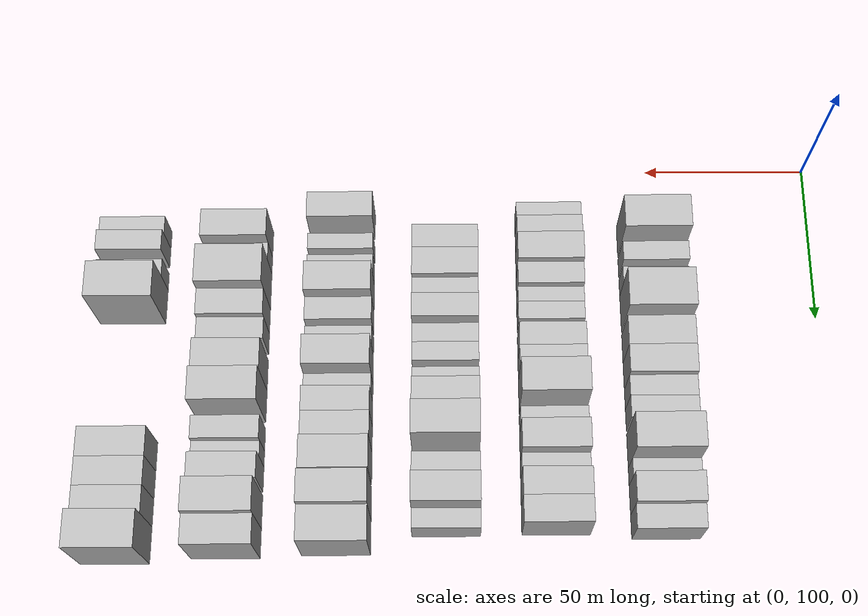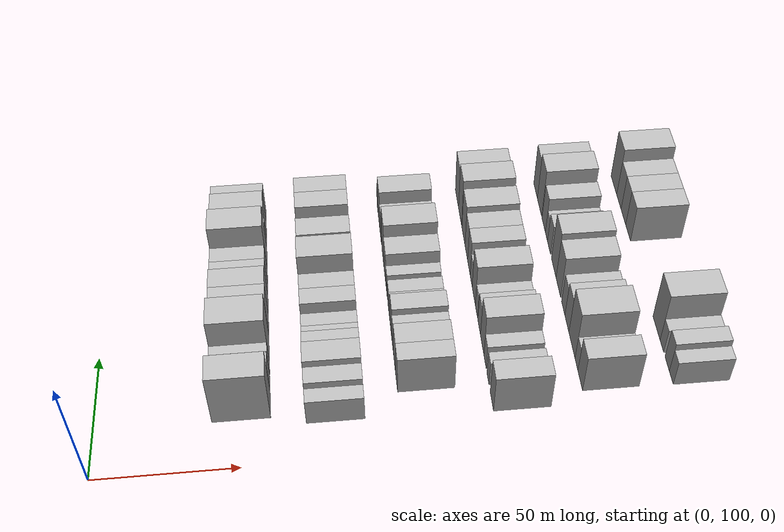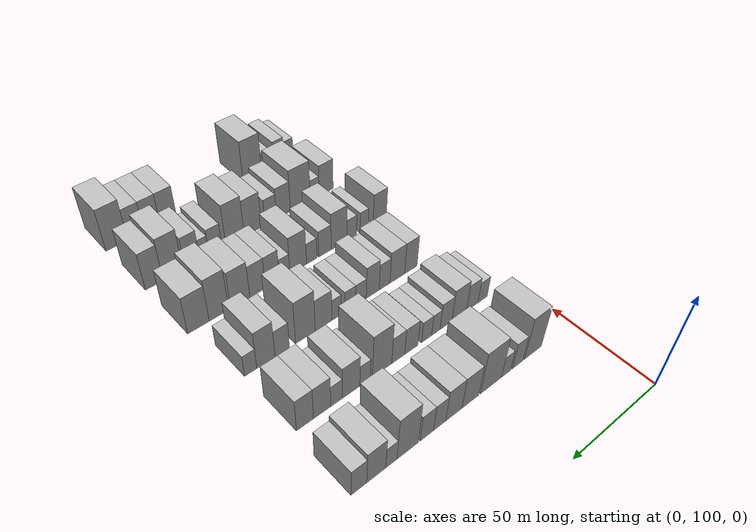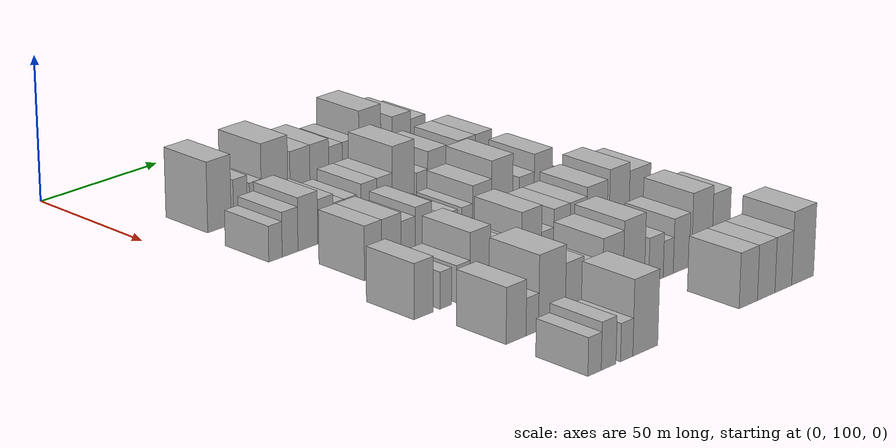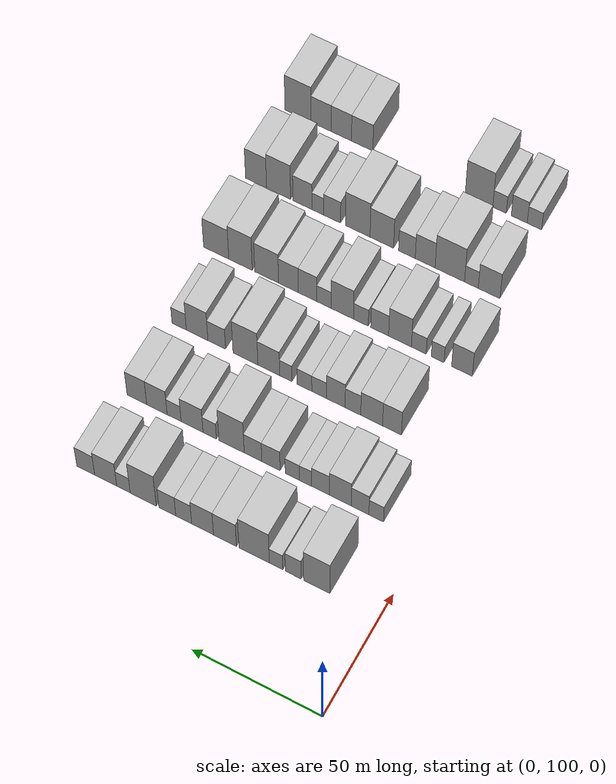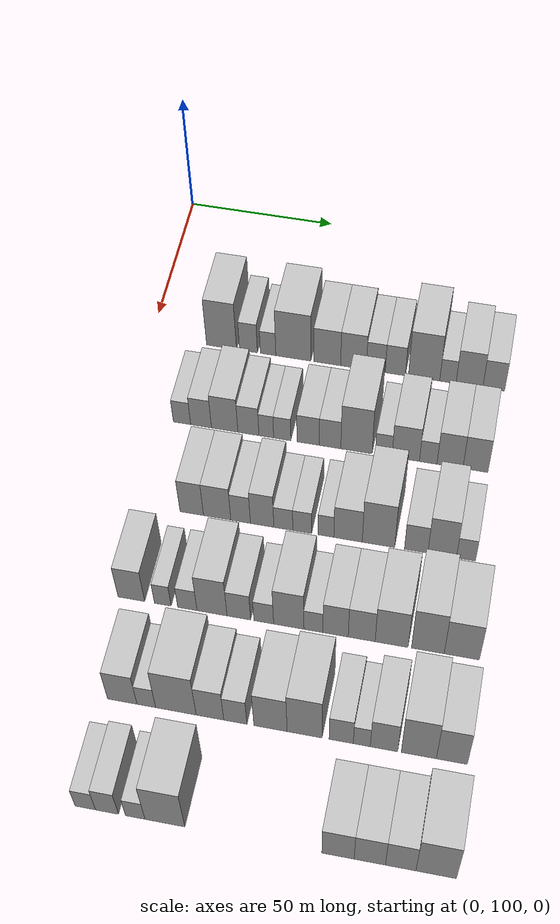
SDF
<sdf version="1.6">
 <world name="default">
  <model name="building_75">
   <static>1</static>
   <pose>50.0000 124.0532 0 0.000000 0.000000 0.000000</pose>
   <link name="link">
    <pose>0 0 12.00 0 0 0</pose>
    <collision name="collision"><geometry><box><size>20.0000 10.1865 24.0000</size></box></geometry></collision>
    <visual name="visual">
     <cast_shadows>0</cast_shadows>
     <geometry><box><size>20.0000 10.1865 24.0000</size></box></geometry>
     <material>
      <script>
       <uri>model://HANNAS_wall/materials/scripts</uri>
       <uri>model://HANNAS_wall/materials/textures</uri>
       <name>vrc/HANNAS_wall</name>
      </script>
     </material>
    </visual>
   </link>
  </model>
  <model name="building_76">
   <static>1</static>
   <pose>50.0000 133.1814 0 0.000000 0.000000 0.000000</pose>
   <link name="link">
    <pose>0 0 7.50 0 0 0</pose>
    <collision name="collision"><geometry><box><size>20.0000 6.0699 15.0000</size></box></geometry></collision>
    <visual name="visual">
     <cast_shadows>0</cast_shadows>
     <geometry><box><size>20.0000 6.0699 15.0000</size></box></geometry>
     <material>
      <script>
       <uri>model://HANNAS_wall/materials/scripts</uri>
       <uri>model://HANNAS_wall/materials/textures</uri>
       <name>vrc/HANNAS_wall</name>
      </script>
     </material>
    </visual>
   </link>
  </model>
  <model name="building_77">
   <static>1</static>
   <pose>50.0000 139.8246 0 0.000000 0.000000 0.000000</pose>
   <link name="link">
    <pose>0 0 6.00 0 0 0</pose>
    <collision name="collision"><geometry><box><size>20.0000 5.2166 12.0000</size></box></geometry></collision>
    <visual name="visual">
     <cast_shadows>0</cast_shadows>
     <geometry><box><size>20.0000 5.2166 12.0000</size></box></geometry>
     <material>
      <script>
       <uri>model://HANNAS_wall/materials/scripts</uri>
       <uri>model://HANNAS_wall/materials/textures</uri>
       <name>vrc/HANNAS_wall</name>
      </script>
     </material>
    </visual>
   </link>
  </model>
  <model name="building_78">
   <static>1</static>
   <pose>50.0000 148.3395 0 0.000000 0.000000 0.000000</pose>
   <link name="link">
    <pose>0 0 12.00 0 0 0</pose>
    <collision name="collision"><geometry><box><size>20.0000 11.8132 24.0000</size></box></geometry></collision>
    <visual name="visual">
     <cast_shadows>0</cast_shadows>
     <geometry><box><size>20.0000 11.8132 24.0000</size></box></geometry>
     <material>
      <script>
       <uri>model://HANNAS_wall/materials/scripts</uri>
       <uri>model://HANNAS_wall/materials/textures</uri>
       <name>vrc/HANNAS_wall</name>
      </script>
     </material>
    </visual>
   </link>
  </model>
  <model name="building_79">
   <static>1</static>
   <pose>50.0000 159.7359 0 0.000000 0.000000 0.000000</pose>
   <link name="link">
    <pose>0 0 9.00 0 0 0</pose>
    <collision name="collision"><geometry><box><size>20.0000 8.9795 18.0000</size></box></geometry></collision>
    <visual name="visual">
     <cast_shadows>0</cast_shadows>
     <geometry><box><size>20.0000 8.9795 18.0000</size></box></geometry>
     <material>
      <script>
       <uri>model://HANNAS_wall/materials/scripts</uri>
       <uri>model://HANNAS_wall/materials/textures</uri>
       <name>vrc/HANNAS_wall</name>
      </script>
     </material>
    </visual>
   </link>
  </model>
  <model name="building_80">
   <static>1</static>
   <pose>50.0000 168.5128 0 0.000000 0.000000 0.000000</pose>
   <link name="link">
    <pose>0 0 9.00 0 0 0</pose>
    <collision name="collision"><geometry><box><size>20.0000 8.5744 18.0000</size></box></geometry></collision>
    <visual name="visual">
     <cast_shadows>0</cast_shadows>
     <geometry><box><size>20.0000 8.5744 18.0000</size></box></geometry>
     <material>
      <script>
       <uri>model://HANNAS_wall/materials/scripts</uri>
       <uri>model://HANNAS_wall/materials/textures</uri>
       <name>vrc/HANNAS_wall</name>
      </script>
     </material>
    </visual>
   </link>
  </model>
  <model name="building_81">
   <static>1</static>
   <pose>50.0000 175.9390 0 0.000000 0.000000 0.000000</pose>
   <link name="link">
    <pose>0 0 7.50 0 0 0</pose>
    <collision name="collision"><geometry><box><size>20.0000 6.2779 15.0000</size></box></geometry></collision>
    <visual name="visual">
     <cast_shadows>0</cast_shadows>
     <geometry><box><size>20.0000 6.2779 15.0000</size></box></geometry>
     <material>
      <script>
       <uri>model://HANNAS_wall/materials/scripts</uri>
       <uri>model://HANNAS_wall/materials/textures</uri>
       <name>vrc/HANNAS_wall</name>
      </script>
     </material>
    </visual>
   </link>
  </model>
  <model name="building_82">
   <static>1</static>
   <pose>50.0000 182.4196 0 0.000000 0.000000 0.000000</pose>
   <link name="link">
    <pose>0 0 7.50 0 0 0</pose>
    <collision name="collision"><geometry><box><size>20.0000 6.6834 15.0000</size></box></geometry></collision>
    <visual name="visual">
     <cast_shadows>0</cast_shadows>
     <geometry><box><size>20.0000 6.6834 15.0000</size></box></geometry>
     <material>
      <script>
       <uri>model://HANNAS_wall/materials/scripts</uri>
       <uri>model://HANNAS_wall/materials/textures</uri>
       <name>vrc/HANNAS_wall</name>
      </script>
     </material>
    </visual>
   </link>
  </model>
  <model name="building_83">
   <static>1</static>
   <pose>50.0000 191.9415 0 0.000000 0.000000 0.000000</pose>
   <link name="link">
    <pose>0 0 12.00 0 0 0</pose>
    <collision name="collision"><geometry><box><size>20.0000 10.3604 24.0000</size></box></geometry></collision>
    <visual name="visual">
     <cast_shadows>0</cast_shadows>
     <geometry><box><size>20.0000 10.3604 24.0000</size></box></geometry>
     <material>
      <script>
       <uri>model://HANNAS_wall/materials/scripts</uri>
       <uri>model://HANNAS_wall/materials/textures</uri>
       <name>vrc/HANNAS_wall</name>
      </script>
     </material>
    </visual>
   </link>
  </model>
  <model name="building_84">
   <static>1</static>
   <pose>50.0000 199.7989 0 0.000000 0.000000 0.000000</pose>
   <link name="link">
    <pose>0 0 6.00 0 0 0</pose>
    <collision name="collision"><geometry><box><size>20.0000 5.3544 12.0000</size></box></geometry></collision>
    <visual name="visual">
     <cast_shadows>0</cast_shadows>
     <geometry><box><size>20.0000 5.3544 12.0000</size></box></geometry>
     <material>
      <script>
       <uri>model://HANNAS_wall/materials/scripts</uri>
       <uri>model://HANNAS_wall/materials/textures</uri>
       <name>vrc/HANNAS_wall</name>
      </script>
     </material>
    </visual>
   </link>
  </model>
  <model name="building_85">
   <static>1</static>
   <pose>50.0000 206.8734 0 0.000000 0.000000 0.000000</pose>
   <link name="link">
    <pose>0 0 9.00 0 0 0</pose>
    <collision name="collision"><geometry><box><size>20.0000 8.7946 18.0000</size></box></geometry></collision>
    <visual name="visual">
     <cast_shadows>0</cast_shadows>
     <geometry><box><size>20.0000 8.7946 18.0000</size></box></geometry>
     <material>
      <script>
       <uri>model://HANNAS_wall/materials/scripts</uri>
       <uri>model://HANNAS_wall/materials/textures</uri>
       <name>vrc/HANNAS_wall</name>
      </script>
     </material>
    </visual>
   </link>
  </model>
  <model name="building_86">
   <static>1</static>
   <pose>50.0000 214.8368 0 0.000000 0.000000 0.000000</pose>
   <link name="link">
    <pose>0 0 7.50 0 0 0</pose>
    <collision name="collision"><geometry><box><size>20.0000 7.1323 15.0000</size></box></geometry></collision>
    <visual name="visual">
     <cast_shadows>0</cast_shadows>
     <geometry><box><size>20.0000 7.1323 15.0000</size></box></geometry>
     <material>
      <script>
       <uri>model://HANNAS_wall/materials/scripts</uri>
       <uri>model://HANNAS_wall/materials/textures</uri>
       <name>vrc/HANNAS_wall</name>
      </script>
     </material>
    </visual>
   </link>
  </model>
  <model name="building_194">
   <static>1</static>
   <pose>82.0000 118.3638 0 0.000000 0.000000 0.000000</pose>
   <link name="link">
    <pose>0 0 6.00 0 0 0</pose>
    <collision name="collision"><geometry><box><size>20.0000 5.7143 12.0000</size></box></geometry></collision>
    <visual name="visual">
     <cast_shadows>0</cast_shadows>
     <geometry><box><size>20.0000 5.7143 12.0000</size></box></geometry>
     <material>
      <script>
       <uri>model://HANNAS_wall/materials/scripts</uri>
       <uri>model://HANNAS_wall/materials/textures</uri>
       <name>vrc/HANNAS_wall</name>
      </script>
     </material>
    </visual>
   </link>
  </model>
  <model name="building_195">
   <static>1</static>
   <pose>82.0000 124.6307 0 0.000000 0.000000 0.000000</pose>
   <link name="link">
    <pose>0 0 7.50 0 0 0</pose>
    <collision name="collision"><geometry><box><size>20.0000 6.8194 15.0000</size></box></geometry></collision>
    <visual name="visual">
     <cast_shadows>0</cast_shadows>
     <geometry><box><size>20.0000 6.8194 15.0000</size></box></geometry>
     <material>
      <script>
       <uri>model://HANNAS_wall/materials/scripts</uri>
       <uri>model://HANNAS_wall/materials/textures</uri>
       <name>vrc/HANNAS_wall</name>
      </script>
     </material>
    </visual>
   </link>
  </model>
  <model name="building_196">
   <static>1</static>
   <pose>82.0000 132.3668 0 0.000000 0.000000 0.000000</pose>
   <link name="link">
    <pose>0 0 9.00 0 0 0</pose>
    <collision name="collision"><geometry><box><size>20.0000 8.6529 18.0000</size></box></geometry></collision>
    <visual name="visual">
     <cast_shadows>0</cast_shadows>
     <geometry><box><size>20.0000 8.6529 18.0000</size></box></geometry>
     <material>
      <script>
       <uri>model://HANNAS_wall/materials/scripts</uri>
       <uri>model://HANNAS_wall/materials/textures</uri>
       <name>vrc/HANNAS_wall</name>
      </script>
     </material>
    </visual>
   </link>
  </model>
  <model name="building_197">
   <static>1</static>
   <pose>82.0000 140.1197 0 0.000000 0.000000 0.000000</pose>
   <link name="link">
    <pose>0 0 7.50 0 0 0</pose>
    <collision name="collision"><geometry><box><size>20.0000 6.8528 15.0000</size></box></geometry></collision>
    <visual name="visual">
     <cast_shadows>0</cast_shadows>
     <geometry><box><size>20.0000 6.8528 15.0000</size></box></geometry>
     <material>
      <script>
       <uri>model://HANNAS_wall/materials/scripts</uri>
       <uri>model://HANNAS_wall/materials/textures</uri>
       <name>vrc/HANNAS_wall</name>
      </script>
     </material>
    </visual>
   </link>
  </model>
  <model name="building_198">
   <static>1</static>
   <pose>82.0000 145.9473 0 0.000000 0.000000 0.000000</pose>
   <link name="link">
    <pose>0 0 6.00 0 0 0</pose>
    <collision name="collision"><geometry><box><size>20.0000 4.8024 12.0000</size></box></geometry></collision>
    <visual name="visual">
     <cast_shadows>0</cast_shadows>
     <geometry><box><size>20.0000 4.8024 12.0000</size></box></geometry>
     <material>
      <script>
       <uri>model://HANNAS_wall/materials/scripts</uri>
       <uri>model://HANNAS_wall/materials/textures</uri>
       <name>vrc/HANNAS_wall</name>
      </script>
     </material>
    </visual>
   </link>
  </model>
  <model name="building_199">
   <static>1</static>
   <pose>82.0000 151.1434 0 0.000000 0.000000 0.000000</pose>
   <link name="link">
    <pose>0 0 6.00 0 0 0</pose>
    <collision name="collision"><geometry><box><size>20.0000 5.5899 12.0000</size></box></geometry></collision>
    <visual name="visual">
     <cast_shadows>0</cast_shadows>
     <geometry><box><size>20.0000 5.5899 12.0000</size></box></geometry>
     <material>
      <script>
       <uri>model://HANNAS_wall/materials/scripts</uri>
       <uri>model://HANNAS_wall/materials/textures</uri>
       <name>vrc/HANNAS_wall</name>
      </script>
     </material>
    </visual>
   </link>
  </model>
  <model name="building_200">
   <static>1</static>
   <pose>82.0000 159.5462 0 0.000000 0.000000 0.000000</pose>
   <link name="link">
    <pose>0 0 7.50 0 0 0</pose>
    <collision name="collision"><geometry><box><size>20.0000 7.2158 15.0000</size></box></geometry></collision>
    <visual name="visual">
     <cast_shadows>0</cast_shadows>
     <geometry><box><size>20.0000 7.2158 15.0000</size></box></geometry>
     <material>
      <script>
       <uri>model://HANNAS_wall/materials/scripts</uri>
       <uri>model://HANNAS_wall/materials/textures</uri>
       <name>vrc/HANNAS_wall</name>
      </script>
     </material>
    </visual>
   </link>
  </model>
  <model name="building_201">
   <static>1</static>
   <pose>82.0000 166.6278 0 0.000000 0.000000 0.000000</pose>
   <link name="link">
    <pose>0 0 7.50 0 0 0</pose>
    <collision name="collision"><geometry><box><size>20.0000 6.9473 15.0000</size></box></geometry></collision>
    <visual name="visual">
     <cast_shadows>0</cast_shadows>
     <geometry><box><size>20.0000 6.9473 15.0000</size></box></geometry>
     <material>
      <script>
       <uri>model://HANNAS_wall/materials/scripts</uri>
       <uri>model://HANNAS_wall/materials/textures</uri>
       <name>vrc/HANNAS_wall</name>
      </script>
     </material>
    </visual>
   </link>
  </model>
  <model name="building_202">
   <static>1</static>
   <pose>82.0000 175.1298 0 0.000000 0.000000 0.000000</pose>
   <link name="link">
    <pose>0 0 12.00 0 0 0</pose>
    <collision name="collision"><geometry><box><size>20.0000 10.0567 24.0000</size></box></geometry></collision>
    <visual name="visual">
     <cast_shadows>0</cast_shadows>
     <geometry><box><size>20.0000 10.0567 24.0000</size></box></geometry>
     <material>
      <script>
       <uri>model://HANNAS_wall/materials/scripts</uri>
       <uri>model://HANNAS_wall/materials/textures</uri>
       <name>vrc/HANNAS_wall</name>
      </script>
     </material>
    </visual>
   </link>
  </model>
  <model name="building_203">
   <static>1</static>
   <pose>82.0000 183.8360 0 0.000000 0.000000 0.000000</pose>
   <link name="link">
    <pose>0 0 6.00 0 0 0</pose>
    <collision name="collision"><geometry><box><size>20.0000 5.3557 12.0000</size></box></geometry></collision>
    <visual name="visual">
     <cast_shadows>0</cast_shadows>
     <geometry><box><size>20.0000 5.3557 12.0000</size></box></geometry>
     <material>
      <script>
       <uri>model://HANNAS_wall/materials/scripts</uri>
       <uri>model://HANNAS_wall/materials/textures</uri>
       <name>vrc/HANNAS_wall</name>
      </script>
     </material>
    </visual>
   </link>
  </model>
  <model name="building_204">
   <static>1</static>
   <pose>82.0000 190.8900 0 0.000000 0.000000 0.000000</pose>
   <link name="link">
    <pose>0 0 9.00 0 0 0</pose>
    <collision name="collision"><geometry><box><size>20.0000 8.7524 18.0000</size></box></geometry></collision>
    <visual name="visual">
     <cast_shadows>0</cast_shadows>
     <geometry><box><size>20.0000 8.7524 18.0000</size></box></geometry>
     <material>
      <script>
       <uri>model://HANNAS_wall/materials/scripts</uri>
       <uri>model://HANNAS_wall/materials/textures</uri>
       <name>vrc/HANNAS_wall</name>
      </script>
     </material>
    </visual>
   </link>
  </model>
  <model name="building_205">
   <static>1</static>
   <pose>82.0000 198.0589 0 0.000000 0.000000 0.000000</pose>
   <link name="link">
    <pose>0 0 6.00 0 0 0</pose>
    <collision name="collision"><geometry><box><size>20.0000 5.5853 12.0000</size></box></geometry></collision>
    <visual name="visual">
     <cast_shadows>0</cast_shadows>
     <geometry><box><size>20.0000 5.5853 12.0000</size></box></geometry>
     <material>
      <script>
       <uri>model://HANNAS_wall/materials/scripts</uri>
       <uri>model://HANNAS_wall/materials/textures</uri>
       <name>vrc/HANNAS_wall</name>
      </script>
     </material>
    </visual>
   </link>
  </model>
  <model name="building_206">
   <static>1</static>
   <pose>82.0000 204.9548 0 0.000000 0.000000 0.000000</pose>
   <link name="link">
    <pose>0 0 9.00 0 0 0</pose>
    <collision name="collision"><geometry><box><size>20.0000 8.2065 18.0000</size></box></geometry></collision>
    <visual name="visual">
     <cast_shadows>0</cast_shadows>
     <geometry><box><size>20.0000 8.2065 18.0000</size></box></geometry>
     <material>
      <script>
       <uri>model://HANNAS_wall/materials/scripts</uri>
       <uri>model://HANNAS_wall/materials/textures</uri>
       <name>vrc/HANNAS_wall</name>
      </script>
     </material>
    </visual>
   </link>
  </model>
  <model name="building_207">
   <static>1</static>
   <pose>82.0000 213.0105 0 0.000000 0.000000 0.000000</pose>
   <link name="link">
    <pose>0 0 9.00 0 0 0</pose>
    <collision name="collision"><geometry><box><size>20.0000 7.9051 18.0000</size></box></geometry></collision>
    <visual name="visual">
     <cast_shadows>0</cast_shadows>
     <geometry><box><size>20.0000 7.9051 18.0000</size></box></geometry>
     <material>
      <script>
       <uri>model://HANNAS_wall/materials/scripts</uri>
       <uri>model://HANNAS_wall/materials/textures</uri>
       <name>vrc/HANNAS_wall</name>
      </script>
     </material>
    </visual>
   </link>
  </model>
  <model name="building_322">
   <static>1</static>
   <pose>114.0000 129.2462 0 0.000000 0.000000 0.000000</pose>
   <link name="link">
    <pose>0 0 9.00 0 0 0</pose>
    <collision name="collision"><geometry><box><size>20.0000 7.4154 18.0000</size></box></geometry></collision>
    <visual name="visual">
     <cast_shadows>0</cast_shadows>
     <geometry><box><size>20.0000 7.4154 18.0000</size></box></geometry>
     <material>
      <script>
       <uri>model://HANNAS_wall/materials/scripts</uri>
       <uri>model://HANNAS_wall/materials/textures</uri>
       <name>vrc/HANNAS_wall</name>
      </script>
     </material>
    </visual>
   </link>
  </model>
  <model name="building_323">
   <static>1</static>
   <pose>114.0000 137.2560 0 0.000000 0.000000 0.000000</pose>
   <link name="link">
    <pose>0 0 9.00 0 0 0</pose>
    <collision name="collision"><geometry><box><size>20.0000 8.6041 18.0000</size></box></geometry></collision>
    <visual name="visual">
     <cast_shadows>0</cast_shadows>
     <geometry><box><size>20.0000 8.6041 18.0000</size></box></geometry>
     <material>
      <script>
       <uri>model://HANNAS_wall/materials/scripts</uri>
       <uri>model://HANNAS_wall/materials/textures</uri>
       <name>vrc/HANNAS_wall</name>
      </script>
     </material>
    </visual>
   </link>
  </model>
  <model name="building_324">
   <static>1</static>
   <pose>114.0000 144.6471 0 0.000000 0.000000 0.000000</pose>
   <link name="link">
    <pose>0 0 7.50 0 0 0</pose>
    <collision name="collision"><geometry><box><size>20.0000 6.1782 15.0000</size></box></geometry></collision>
    <visual name="visual">
     <cast_shadows>0</cast_shadows>
     <geometry><box><size>20.0000 6.1782 15.0000</size></box></geometry>
     <material>
      <script>
       <uri>model://HANNAS_wall/materials/scripts</uri>
       <uri>model://HANNAS_wall/materials/textures</uri>
       <name>vrc/HANNAS_wall</name>
      </script>
     </material>
    </visual>
   </link>
  </model>
  <model name="building_325">
   <static>1</static>
   <pose>114.0000 151.4045 0 0.000000 0.000000 0.000000</pose>
   <link name="link">
    <pose>0 0 9.00 0 0 0</pose>
    <collision name="collision"><geometry><box><size>20.0000 7.3365 18.0000</size></box></geometry></collision>
    <visual name="visual">
     <cast_shadows>0</cast_shadows>
     <geometry><box><size>20.0000 7.3365 18.0000</size></box></geometry>
     <material>
      <script>
       <uri>model://HANNAS_wall/materials/scripts</uri>
       <uri>model://HANNAS_wall/materials/textures</uri>
       <name>vrc/HANNAS_wall</name>
      </script>
     </material>
    </visual>
   </link>
  </model>
  <model name="building_326">
   <static>1</static>
   <pose>114.0000 158.0293 0 0.000000 0.000000 0.000000</pose>
   <link name="link">
    <pose>0 0 6.00 0 0 0</pose>
    <collision name="collision"><geometry><box><size>20.0000 5.9131 12.0000</size></box></geometry></collision>
    <visual name="visual">
     <cast_shadows>0</cast_shadows>
     <geometry><box><size>20.0000 5.9131 12.0000</size></box></geometry>
     <material>
      <script>
       <uri>model://HANNAS_wall/materials/scripts</uri>
       <uri>model://HANNAS_wall/materials/textures</uri>
       <name>vrc/HANNAS_wall</name>
      </script>
     </material>
    </visual>
   </link>
  </model>
  <model name="building_327">
   <static>1</static>
   <pose>114.0000 163.9205 0 0.000000 0.000000 0.000000</pose>
   <link name="link">
    <pose>0 0 6.00 0 0 0</pose>
    <collision name="collision"><geometry><box><size>20.0000 5.8694 12.0000</size></box></geometry></collision>
    <visual name="visual">
     <cast_shadows>0</cast_shadows>
     <geometry><box><size>20.0000 5.8694 12.0000</size></box></geometry>
     <material>
      <script>
       <uri>model://HANNAS_wall/materials/scripts</uri>
       <uri>model://HANNAS_wall/materials/textures</uri>
       <name>vrc/HANNAS_wall</name>
      </script>
     </material>
    </visual>
   </link>
  </model>
  <model name="building_328">
   <static>1</static>
   <pose>114.0000 171.3100 0 0.000000 0.000000 0.000000</pose>
   <link name="link">
    <pose>0 0 6.00 0 0 0</pose>
    <collision name="collision"><geometry><box><size>20.0000 4.9096 12.0000</size></box></geometry></collision>
    <visual name="visual">
     <cast_shadows>0</cast_shadows>
     <geometry><box><size>20.0000 4.9096 12.0000</size></box></geometry>
     <material>
      <script>
       <uri>model://HANNAS_wall/materials/scripts</uri>
       <uri>model://HANNAS_wall/materials/textures</uri>
       <name>vrc/HANNAS_wall</name>
      </script>
     </material>
    </visual>
   </link>
  </model>
  <model name="building_329">
   <static>1</static>
   <pose>114.0000 178.1486 0 0.000000 0.000000 0.000000</pose>
   <link name="link">
    <pose>0 0 9.00 0 0 0</pose>
    <collision name="collision"><geometry><box><size>20.0000 8.7676 18.0000</size></box></geometry></collision>
    <visual name="visual">
     <cast_shadows>0</cast_shadows>
     <geometry><box><size>20.0000 8.7676 18.0000</size></box></geometry>
     <material>
      <script>
       <uri>model://HANNAS_wall/materials/scripts</uri>
       <uri>model://HANNAS_wall/materials/textures</uri>
       <name>vrc/HANNAS_wall</name>
      </script>
     </material>
    </visual>
   </link>
  </model>
  <model name="building_330">
   <static>1</static>
   <pose>114.0000 187.5301 0 0.000000 0.000000 0.000000</pose>
   <link name="link">
    <pose>0 0 12.00 0 0 0</pose>
    <collision name="collision"><geometry><box><size>20.0000 9.9954 24.0000</size></box></geometry></collision>
    <visual name="visual">
     <cast_shadows>0</cast_shadows>
     <geometry><box><size>20.0000 9.9954 24.0000</size></box></geometry>
     <material>
      <script>
       <uri>model://HANNAS_wall/materials/scripts</uri>
       <uri>model://HANNAS_wall/materials/textures</uri>
       <name>vrc/HANNAS_wall</name>
      </script>
     </material>
    </visual>
   </link>
  </model>
  <model name="building_331">
   <static>1</static>
   <pose>114.0000 199.1044 0 0.000000 0.000000 0.000000</pose>
   <link name="link">
    <pose>0 0 7.50 0 0 0</pose>
    <collision name="collision"><geometry><box><size>20.0000 7.1531 15.0000</size></box></geometry></collision>
    <visual name="visual">
     <cast_shadows>0</cast_shadows>
     <geometry><box><size>20.0000 7.1531 15.0000</size></box></geometry>
     <material>
      <script>
       <uri>model://HANNAS_wall/materials/scripts</uri>
       <uri>model://HANNAS_wall/materials/textures</uri>
       <name>vrc/HANNAS_wall</name>
      </script>
     </material>
    </visual>
   </link>
  </model>
  <model name="building_332">
   <static>1</static>
   <pose>114.0000 207.0483 0 0.000000 0.000000 0.000000</pose>
   <link name="link">
    <pose>0 0 10.50 0 0 0</pose>
    <collision name="collision"><geometry><box><size>20.0000 8.7348 21.0000</size></box></geometry></collision>
    <visual name="visual">
     <cast_shadows>0</cast_shadows>
     <geometry><box><size>20.0000 8.7348 21.0000</size></box></geometry>
     <material>
      <script>
       <uri>model://HANNAS_wall/materials/scripts</uri>
       <uri>model://HANNAS_wall/materials/textures</uri>
       <name>vrc/HANNAS_wall</name>
      </script>
     </material>
    </visual>
   </link>
  </model>
  <model name="building_333">
   <static>1</static>
   <pose>114.0000 214.3196 0 0.000000 0.000000 0.000000</pose>
   <link name="link">
    <pose>0 0 6.00 0 0 0</pose>
    <collision name="collision"><geometry><box><size>20.0000 5.8076 12.0000</size></box></geometry></collision>
    <visual name="visual">
     <cast_shadows>0</cast_shadows>
     <geometry><box><size>20.0000 5.8076 12.0000</size></box></geometry>
     <material>
      <script>
       <uri>model://HANNAS_wall/materials/scripts</uri>
       <uri>model://HANNAS_wall/materials/textures</uri>
       <name>vrc/HANNAS_wall</name>
      </script>
     </material>
    </visual>
   </link>
  </model>
  <model name="building_439">
   <static>1</static>
   <pose>146.0000 118.4975 0 0.000000 0.000000 0.000000</pose>
   <link name="link">
    <pose>0 0 9.00 0 0 0</pose>
    <collision name="collision"><geometry><box><size>20.0000 8.1673 18.0000</size></box></geometry></collision>
    <visual name="visual">
     <cast_shadows>0</cast_shadows>
     <geometry><box><size>20.0000 8.1673 18.0000</size></box></geometry>
     <material>
      <script>
       <uri>model://HANNAS_wall/materials/scripts</uri>
       <uri>model://HANNAS_wall/materials/textures</uri>
       <name>vrc/HANNAS_wall</name>
      </script>
     </material>
    </visual>
   </link>
  </model>
  <model name="building_440">
   <static>1</static>
   <pose>146.0000 128.1192 0 0.000000 0.000000 0.000000</pose>
   <link name="link">
    <pose>0 0 6.00 0 0 0</pose>
    <collision name="collision"><geometry><box><size>20.0000 5.0762 12.0000</size></box></geometry></collision>
    <visual name="visual">
     <cast_shadows>0</cast_shadows>
     <geometry><box><size>20.0000 5.0762 12.0000</size></box></geometry>
     <material>
      <script>
       <uri>model://HANNAS_wall/materials/scripts</uri>
       <uri>model://HANNAS_wall/materials/textures</uri>
       <name>vrc/HANNAS_wall</name>
      </script>
     </material>
    </visual>
   </link>
  </model>
  <model name="building_441">
   <static>1</static>
   <pose>146.0000 135.5957 0 0.000000 0.000000 0.000000</pose>
   <link name="link">
    <pose>0 0 6.00 0 0 0</pose>
    <collision name="collision"><geometry><box><size>20.0000 5.8767 12.0000</size></box></geometry></collision>
    <visual name="visual">
     <cast_shadows>0</cast_shadows>
     <geometry><box><size>20.0000 5.8767 12.0000</size></box></geometry>
     <material>
      <script>
       <uri>model://HANNAS_wall/materials/scripts</uri>
       <uri>model://HANNAS_wall/materials/textures</uri>
       <name>vrc/HANNAS_wall</name>
      </script>
     </material>
    </visual>
   </link>
  </model>
  <model name="building_442">
   <static>1</static>
   <pose>146.0000 143.0808 0 0.000000 0.000000 0.000000</pose>
   <link name="link">
    <pose>0 0 10.50 0 0 0</pose>
    <collision name="collision"><geometry><box><size>20.0000 9.0933 21.0000</size></box></geometry></collision>
    <visual name="visual">
     <cast_shadows>0</cast_shadows>
     <geometry><box><size>20.0000 9.0933 21.0000</size></box></geometry>
     <material>
      <script>
       <uri>model://HANNAS_wall/materials/scripts</uri>
       <uri>model://HANNAS_wall/materials/textures</uri>
       <name>vrc/HANNAS_wall</name>
      </script>
     </material>
    </visual>
   </link>
  </model>
  <model name="building_443">
   <static>1</static>
   <pose>146.0000 151.1856 0 0.000000 0.000000 0.000000</pose>
   <link name="link">
    <pose>0 0 7.50 0 0 0</pose>
    <collision name="collision"><geometry><box><size>20.0000 7.1165 15.0000</size></box></geometry></collision>
    <visual name="visual">
     <cast_shadows>0</cast_shadows>
     <geometry><box><size>20.0000 7.1165 15.0000</size></box></geometry>
     <material>
      <script>
       <uri>model://HANNAS_wall/materials/scripts</uri>
       <uri>model://HANNAS_wall/materials/textures</uri>
       <name>vrc/HANNAS_wall</name>
      </script>
     </material>
    </visual>
   </link>
  </model>
  <model name="building_444">
   <static>1</static>
   <pose>146.0000 158.6995 0 0.000000 0.000000 0.000000</pose>
   <link name="link">
    <pose>0 0 6.00 0 0 0</pose>
    <collision name="collision"><geometry><box><size>20.0000 5.9112 12.0000</size></box></geometry></collision>
    <visual name="visual">
     <cast_shadows>0</cast_shadows>
     <geometry><box><size>20.0000 5.9112 12.0000</size></box></geometry>
     <material>
      <script>
       <uri>model://HANNAS_wall/materials/scripts</uri>
       <uri>model://HANNAS_wall/materials/textures</uri>
       <name>vrc/HANNAS_wall</name>
      </script>
     </material>
    </visual>
   </link>
  </model>
  <model name="building_445">
   <static>1</static>
   <pose>146.0000 166.1949 0 0.000000 0.000000 0.000000</pose>
   <link name="link">
    <pose>0 0 10.50 0 0 0</pose>
    <collision name="collision"><geometry><box><size>20.0000 9.0798 21.0000</size></box></geometry></collision>
    <visual name="visual">
     <cast_shadows>0</cast_shadows>
     <geometry><box><size>20.0000 9.0798 21.0000</size></box></geometry>
     <material>
      <script>
       <uri>model://HANNAS_wall/materials/scripts</uri>
       <uri>model://HANNAS_wall/materials/textures</uri>
       <name>vrc/HANNAS_wall</name>
      </script>
     </material>
    </visual>
   </link>
  </model>
  <model name="building_446">
   <static>1</static>
   <pose>146.0000 173.5675 0 0.000000 0.000000 0.000000</pose>
   <link name="link">
    <pose>0 0 6.00 0 0 0</pose>
    <collision name="collision"><geometry><box><size>20.0000 5.6654 12.0000</size></box></geometry></collision>
    <visual name="visual">
     <cast_shadows>0</cast_shadows>
     <geometry><box><size>20.0000 5.6654 12.0000</size></box></geometry>
     <material>
      <script>
       <uri>model://HANNAS_wall/materials/scripts</uri>
       <uri>model://HANNAS_wall/materials/textures</uri>
       <name>vrc/HANNAS_wall</name>
      </script>
     </material>
    </visual>
   </link>
  </model>
  <model name="building_447">
   <static>1</static>
   <pose>146.0000 180.1564 0 0.000000 0.000000 0.000000</pose>
   <link name="link">
    <pose>0 0 9.00 0 0 0</pose>
    <collision name="collision"><geometry><box><size>20.0000 7.5124 18.0000</size></box></geometry></collision>
    <visual name="visual">
     <cast_shadows>0</cast_shadows>
     <geometry><box><size>20.0000 7.5124 18.0000</size></box></geometry>
     <material>
      <script>
       <uri>model://HANNAS_wall/materials/scripts</uri>
       <uri>model://HANNAS_wall/materials/textures</uri>
       <name>vrc/HANNAS_wall</name>
      </script>
     </material>
    </visual>
   </link>
  </model>
  <model name="building_448">
   <static>1</static>
   <pose>146.0000 187.9078 0 0.000000 0.000000 0.000000</pose>
   <link name="link">
    <pose>0 0 9.00 0 0 0</pose>
    <collision name="collision"><geometry><box><size>20.0000 7.9903 18.0000</size></box></geometry></collision>
    <visual name="visual">
     <cast_shadows>0</cast_shadows>
     <geometry><box><size>20.0000 7.9903 18.0000</size></box></geometry>
     <material>
      <script>
       <uri>model://HANNAS_wall/materials/scripts</uri>
       <uri>model://HANNAS_wall/materials/textures</uri>
       <name>vrc/HANNAS_wall</name>
      </script>
     </material>
    </visual>
   </link>
  </model>
  <model name="building_449">
   <static>1</static>
   <pose>146.0000 196.7622 0 0.000000 0.000000 0.000000</pose>
   <link name="link">
    <pose>0 0 10.50 0 0 0</pose>
    <collision name="collision"><geometry><box><size>20.0000 9.7185 21.0000</size></box></geometry></collision>
    <visual name="visual">
     <cast_shadows>0</cast_shadows>
     <geometry><box><size>20.0000 9.7185 21.0000</size></box></geometry>
     <material>
      <script>
       <uri>model://HANNAS_wall/materials/scripts</uri>
       <uri>model://HANNAS_wall/materials/textures</uri>
       <name>vrc/HANNAS_wall</name>
      </script>
     </material>
    </visual>
   </link>
  </model>
  <model name="building_450">
   <static>1</static>
   <pose>146.0000 207.4247 0 0.000000 0.000000 0.000000</pose>
   <link name="link">
    <pose>0 0 12.00 0 0 0</pose>
    <collision name="collision"><geometry><box><size>20.0000 9.6065 24.0000</size></box></geometry></collision>
    <visual name="visual">
     <cast_shadows>0</cast_shadows>
     <geometry><box><size>20.0000 9.6065 24.0000</size></box></geometry>
     <material>
      <script>
       <uri>model://HANNAS_wall/materials/scripts</uri>
       <uri>model://HANNAS_wall/materials/textures</uri>
       <name>vrc/HANNAS_wall</name>
      </script>
     </material>
    </visual>
   </link>
  </model>
  <model name="building_451">
   <static>1</static>
   <pose>146.0000 217.3797 0 0.000000 0.000000 0.000000</pose>
   <link name="link">
    <pose>0 0 10.50 0 0 0</pose>
    <collision name="collision"><geometry><box><size>20.0000 10.3035 21.0000</size></box></geometry></collision>
    <visual name="visual">
     <cast_shadows>0</cast_shadows>
     <geometry><box><size>20.0000 10.3035 21.0000</size></box></geometry>
     <material>
      <script>
       <uri>model://HANNAS_wall/materials/scripts</uri>
       <uri>model://HANNAS_wall/materials/textures</uri>
       <name>vrc/HANNAS_wall</name>
      </script>
     </material>
    </visual>
   </link>
  </model>
  <model name="building_555">
   <static>1</static>
   <pose>178.0000 124.2823 0 0.000000 0.000000 0.000000</pose>
   <link name="link">
    <pose>0 0 9.00 0 0 0</pose>
    <collision name="collision"><geometry><box><size>20.0000 8.6409 18.0000</size></box></geometry></collision>
    <visual name="visual">
     <cast_shadows>0</cast_shadows>
     <geometry><box><size>20.0000 8.6409 18.0000</size></box></geometry>
     <material>
      <script>
       <uri>model://HANNAS_wall/materials/scripts</uri>
       <uri>model://HANNAS_wall/materials/textures</uri>
       <name>vrc/HANNAS_wall</name>
      </script>
     </material>
    </visual>
   </link>
  </model>
  <model name="building_556">
   <static>1</static>
   <pose>178.0000 131.3429 0 0.000000 0.000000 0.000000</pose>
   <link name="link">
    <pose>0 0 6.00 0 0 0</pose>
    <collision name="collision"><geometry><box><size>20.0000 5.4803 12.0000</size></box></geometry></collision>
    <visual name="visual">
     <cast_shadows>0</cast_shadows>
     <geometry><box><size>20.0000 5.4803 12.0000</size></box></geometry>
     <material>
      <script>
       <uri>model://HANNAS_wall/materials/scripts</uri>
       <uri>model://HANNAS_wall/materials/textures</uri>
       <name>vrc/HANNAS_wall</name>
      </script>
     </material>
    </visual>
   </link>
  </model>
  <model name="building_557">
   <static>1</static>
   <pose>178.0000 139.9928 0 0.000000 0.000000 0.000000</pose>
   <link name="link">
    <pose>0 0 12.00 0 0 0</pose>
    <collision name="collision"><geometry><box><size>20.0000 11.8195 24.0000</size></box></geometry></collision>
    <visual name="visual">
     <cast_shadows>0</cast_shadows>
     <geometry><box><size>20.0000 11.8195 24.0000</size></box></geometry>
     <material>
      <script>
       <uri>model://HANNAS_wall/materials/scripts</uri>
       <uri>model://HANNAS_wall/materials/textures</uri>
       <name>vrc/HANNAS_wall</name>
      </script>
     </material>
    </visual>
   </link>
  </model>
  <model name="building_558">
   <static>1</static>
   <pose>178.0000 149.9056 0 0.000000 0.000000 0.000000</pose>
   <link name="link">
    <pose>0 0 9.00 0 0 0</pose>
    <collision name="collision"><geometry><box><size>20.0000 8.0062 18.0000</size></box></geometry></collision>
    <visual name="visual">
     <cast_shadows>0</cast_shadows>
     <geometry><box><size>20.0000 8.0062 18.0000</size></box></geometry>
     <material>
      <script>
       <uri>model://HANNAS_wall/materials/scripts</uri>
       <uri>model://HANNAS_wall/materials/textures</uri>
       <name>vrc/HANNAS_wall</name>
      </script>
     </material>
    </visual>
   </link>
  </model>
  <model name="building_559">
   <static>1</static>
   <pose>178.0000 157.2701 0 0.000000 0.000000 0.000000</pose>
   <link name="link">
    <pose>0 0 7.50 0 0 0</pose>
    <collision name="collision"><geometry><box><size>20.0000 6.7228 15.0000</size></box></geometry></collision>
    <visual name="visual">
     <cast_shadows>0</cast_shadows>
     <geometry><box><size>20.0000 6.7228 15.0000</size></box></geometry>
     <material>
      <script>
       <uri>model://HANNAS_wall/materials/scripts</uri>
       <uri>model://HANNAS_wall/materials/textures</uri>
       <name>vrc/HANNAS_wall</name>
      </script>
     </material>
    </visual>
   </link>
  </model>
  <model name="building_560">
   <static>1</static>
   <pose>178.0000 167.4081 0 0.000000 0.000000 0.000000</pose>
   <link name="link">
    <pose>0 0 10.50 0 0 0</pose>
    <collision name="collision"><geometry><box><size>20.0000 9.5532 21.0000</size></box></geometry></collision>
    <visual name="visual">
     <cast_shadows>0</cast_shadows>
     <geometry><box><size>20.0000 9.5532 21.0000</size></box></geometry>
     <material>
      <script>
       <uri>model://HANNAS_wall/materials/scripts</uri>
       <uri>model://HANNAS_wall/materials/textures</uri>
       <name>vrc/HANNAS_wall</name>
      </script>
     </material>
    </visual>
   </link>
  </model>
  <model name="building_561">
   <static>1</static>
   <pose>178.0000 177.1918 0 0.000000 0.000000 0.000000</pose>
   <link name="link">
    <pose>0 0 12.00 0 0 0</pose>
    <collision name="collision"><geometry><box><size>20.0000 10.0141 24.0000</size></box></geometry></collision>
    <visual name="visual">
     <cast_shadows>0</cast_shadows>
     <geometry><box><size>20.0000 10.0141 24.0000</size></box></geometry>
     <material>
      <script>
       <uri>model://HANNAS_wall/materials/scripts</uri>
       <uri>model://HANNAS_wall/materials/textures</uri>
       <name>vrc/HANNAS_wall</name>
      </script>
     </material>
    </visual>
   </link>
  </model>
  <model name="building_562">
   <static>1</static>
   <pose>178.0000 187.6553 0 0.000000 0.000000 0.000000</pose>
   <link name="link">
    <pose>0 0 7.50 0 0 0</pose>
    <collision name="collision"><geometry><box><size>20.0000 6.9130 15.0000</size></box></geometry></collision>
    <visual name="visual">
     <cast_shadows>0</cast_shadows>
     <geometry><box><size>20.0000 6.9130 15.0000</size></box></geometry>
     <material>
      <script>
       <uri>model://HANNAS_wall/materials/scripts</uri>
       <uri>model://HANNAS_wall/materials/textures</uri>
       <name>vrc/HANNAS_wall</name>
      </script>
     </material>
    </visual>
   </link>
  </model>
  <model name="building_563">
   <static>1</static>
   <pose>178.0000 193.5163 0 0.000000 0.000000 0.000000</pose>
   <link name="link">
    <pose>0 0 6.00 0 0 0</pose>
    <collision name="collision"><geometry><box><size>20.0000 4.8091 12.0000</size></box></geometry></collision>
    <visual name="visual">
     <cast_shadows>0</cast_shadows>
     <geometry><box><size>20.0000 4.8091 12.0000</size></box></geometry>
     <material>
      <script>
       <uri>model://HANNAS_wall/materials/scripts</uri>
       <uri>model://HANNAS_wall/materials/textures</uri>
       <name>vrc/HANNAS_wall</name>
      </script>
     </material>
    </visual>
   </link>
  </model>
  <model name="building_564">
   <static>1</static>
   <pose>178.0000 199.8045 0 0.000000 0.000000 0.000000</pose>
   <link name="link">
    <pose>0 0 9.00 0 0 0</pose>
    <collision name="collision"><geometry><box><size>20.0000 7.7673 18.0000</size></box></geometry></collision>
    <visual name="visual">
     <cast_shadows>0</cast_shadows>
     <geometry><box><size>20.0000 7.7673 18.0000</size></box></geometry>
     <material>
      <script>
       <uri>model://HANNAS_wall/materials/scripts</uri>
       <uri>model://HANNAS_wall/materials/textures</uri>
       <name>vrc/HANNAS_wall</name>
      </script>
     </material>
    </visual>
   </link>
  </model>
  <model name="building_565">
   <static>1</static>
   <pose>178.0000 209.6328 0 0.000000 0.000000 0.000000</pose>
   <link name="link">
    <pose>0 0 12.00 0 0 0</pose>
    <collision name="collision"><geometry><box><size>20.0000 9.8893 24.0000</size></box></geometry></collision>
    <visual name="visual">
     <cast_shadows>0</cast_shadows>
     <geometry><box><size>20.0000 9.8893 24.0000</size></box></geometry>
     <material>
      <script>
       <uri>model://HANNAS_wall/materials/scripts</uri>
       <uri>model://HANNAS_wall/materials/textures</uri>
       <name>vrc/HANNAS_wall</name>
      </script>
     </material>
    </visual>
   </link>
  </model>
  <model name="building_566">
   <static>1</static>
   <pose>178.0000 218.9230 0 0.000000 0.000000 0.000000</pose>
   <link name="link">
    <pose>0 0 10.50 0 0 0</pose>
    <collision name="collision"><geometry><box><size>20.0000 8.6911 21.0000</size></box></geometry></collision>
    <visual name="visual">
     <cast_shadows>0</cast_shadows>
     <geometry><box><size>20.0000 8.6911 21.0000</size></box></geometry>
     <material>
      <script>
       <uri>model://HANNAS_wall/materials/scripts</uri>
       <uri>model://HANNAS_wall/materials/textures</uri>
       <name>vrc/HANNAS_wall</name>
      </script>
     </material>
    </visual>
   </link>
  </model>
  <model name="building_671">
   <static>1</static>
   <pose>210.0000 122.4469 0 0.000000 0.000000 0.000000</pose>
   <link name="link">
    <pose>0 0 6.00 0 0 0</pose>
    <collision name="collision"><geometry><box><size>20.0000 5.7677 12.0000</size></box></geometry></collision>
    <visual name="visual">
     <cast_shadows>0</cast_shadows>
     <geometry><box><size>20.0000 5.7677 12.0000</size></box></geometry>
     <material>
      <script>
       <uri>model://HANNAS_wall/materials/scripts</uri>
       <uri>model://HANNAS_wall/materials/textures</uri>
       <name>vrc/HANNAS_wall</name>
      </script>
     </material>
    </visual>
   </link>
  </model>
  <model name="building_672">
   <static>1</static>
   <pose>210.0000 128.5549 0 0.000000 0.000000 0.000000</pose>
   <link name="link">
    <pose>0 0 7.50 0 0 0</pose>
    <collision name="collision"><geometry><box><size>20.0000 6.4484 15.0000</size></box></geometry></collision>
    <visual name="visual">
     <cast_shadows>0</cast_shadows>
     <geometry><box><size>20.0000 6.4484 15.0000</size></box></geometry>
     <material>
      <script>
       <uri>model://HANNAS_wall/materials/scripts</uri>
       <uri>model://HANNAS_wall/materials/textures</uri>
       <name>vrc/HANNAS_wall</name>
      </script>
     </material>
    </visual>
   </link>
  </model>
  <model name="building_673">
   <static>1</static>
   <pose>210.0000 136.5085 0 0.000000 0.000000 0.000000</pose>
   <link name="link">
    <pose>0 0 6.00 0 0 0</pose>
    <collision name="collision"><geometry><box><size>20.0000 5.4587 12.0000</size></box></geometry></collision>
    <visual name="visual">
     <cast_shadows>0</cast_shadows>
     <geometry><box><size>20.0000 5.4587 12.0000</size></box></geometry>
     <material>
      <script>
       <uri>model://HANNAS_wall/materials/scripts</uri>
       <uri>model://HANNAS_wall/materials/textures</uri>
       <name>vrc/HANNAS_wall</name>
      </script>
     </material>
    </visual>
   </link>
  </model>
  <model name="building_674">
   <static>1</static>
   <pose>210.0000 144.8161 0 0.000000 0.000000 0.000000</pose>
   <link name="link">
    <pose>0 0 12.00 0 0 0</pose>
    <collision name="collision"><geometry><box><size>20.0000 11.1565 24.0000</size></box></geometry></collision>
    <visual name="visual">
     <cast_shadows>0</cast_shadows>
     <geometry><box><size>20.0000 11.1565 24.0000</size></box></geometry>
     <material>
      <script>
       <uri>model://HANNAS_wall/materials/scripts</uri>
       <uri>model://HANNAS_wall/materials/textures</uri>
       <name>vrc/HANNAS_wall</name>
      </script>
     </material>
    </visual>
   </link>
  </model>
  <model name="building_675">
   <static>1</static>
   <pose>210.0000 192.6002 0 0.000000 0.000000 0.000000</pose>
   <link name="link">
    <pose>0 0 9.00 0 0 0</pose>
    <collision name="collision"><geometry><box><size>20.0000 8.8039 18.0000</size></box></geometry></collision>
    <visual name="visual">
     <cast_shadows>0</cast_shadows>
     <geometry><box><size>20.0000 8.8039 18.0000</size></box></geometry>
     <material>
      <script>
       <uri>model://HANNAS_wall/materials/scripts</uri>
       <uri>model://HANNAS_wall/materials/textures</uri>
       <name>vrc/HANNAS_wall</name>
      </script>
     </material>
    </visual>
   </link>
  </model>
  <model name="building_676">
   <static>1</static>
   <pose>210.0000 201.2493 0 0.000000 0.000000 0.000000</pose>
   <link name="link">
    <pose>0 0 9.00 0 0 0</pose>
    <collision name="collision"><geometry><box><size>20.0000 8.4943 18.0000</size></box></geometry></collision>
    <visual name="visual">
     <cast_shadows>0</cast_shadows>
     <geometry><box><size>20.0000 8.4943 18.0000</size></box></geometry>
     <material>
      <script>
       <uri>model://HANNAS_wall/materials/scripts</uri>
       <uri>model://HANNAS_wall/materials/textures</uri>
       <name>vrc/HANNAS_wall</name>
      </script>
     </material>
    </visual>
   </link>
  </model>
  <model name="building_677">
   <static>1</static>
   <pose>210.0000 209.6121 0 0.000000 0.000000 0.000000</pose>
   <link name="link">
    <pose>0 0 9.00 0 0 0</pose>
    <collision name="collision"><geometry><box><size>20.0000 8.2312 18.0000</size></box></geometry></collision>
    <visual name="visual">
     <cast_shadows>0</cast_shadows>
     <geometry><box><size>20.0000 8.2312 18.0000</size></box></geometry>
     <material>
      <script>
       <uri>model://HANNAS_wall/materials/scripts</uri>
       <uri>model://HANNAS_wall/materials/textures</uri>
       <name>vrc/HANNAS_wall</name>
      </script>
     </material>
    </visual>
   </link>
  </model>
  <model name="building_678">
   <static>1</static>
   <pose>210.0000 219.1773 0 0.000000 0.000000 0.000000</pose>
   <link name="link">
    <pose>0 0 12.00 0 0 0</pose>
    <collision name="collision"><geometry><box><size>20.0000 10.8992 24.0000</size></box></geometry></collision>
    <visual name="visual">
     <cast_shadows>0</cast_shadows>
     <geometry><box><size>20.0000 10.8992 24.0000</size></box></geometry>
     <material>
      <script>
       <uri>model://HANNAS_wall/materials/scripts</uri>
       <uri>model://HANNAS_wall/materials/textures</uri>
       <name>vrc/HANNAS_wall</name>
      </script>
     </material>
    </visual>
   </link>
  </model>
 </world>
</sdf>
